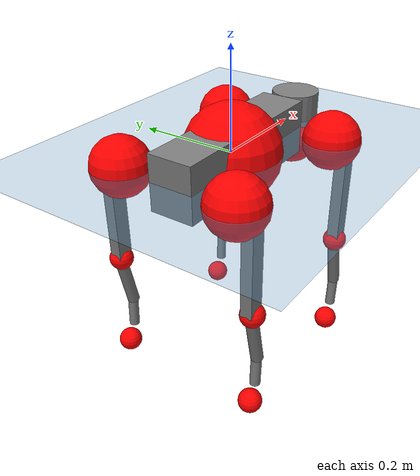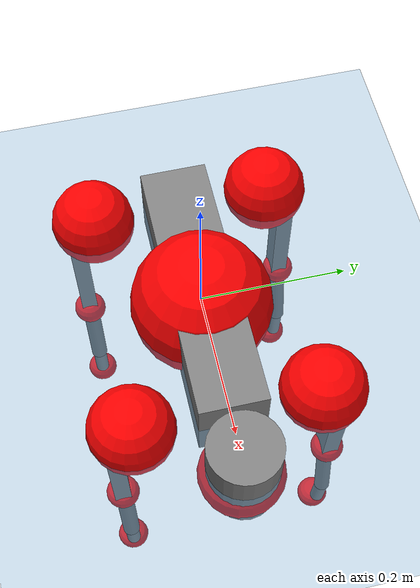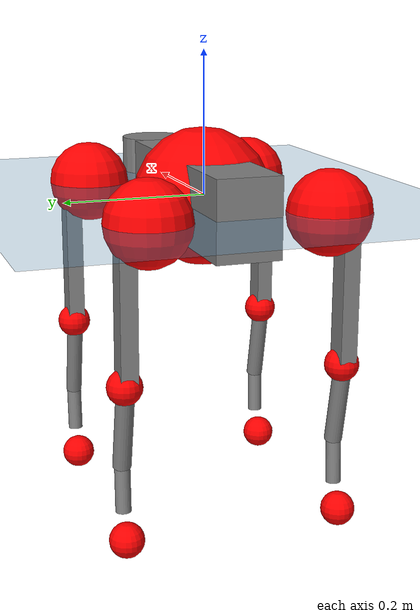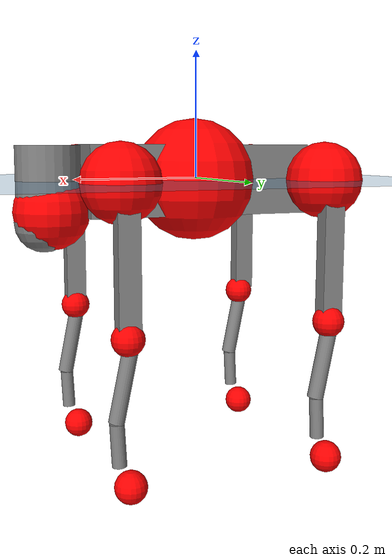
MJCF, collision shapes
<mujoco model="go2">
  <compiler angle="radian" assetdir="assets" balanceinertia="true" inertiafromgeom="false"/>

  <option timestep="0.005" density="1.2" viscosity="2e-05"/>

  <size nkey="1"/>

  <visual>
    <quality shadowsize="8192"/>
    <map shadowclip="0.5"/>
  </visual>

  <default>
    <default class="/">
      <geom contype="0" conaffinity="0" group="1" solref="-1000 -80"/>
      <site size="0.01 0.005 0.005" group="5"/>
      <general forcelimited="true" biastype="affine" gainprm="20" biasprm="0 -20 -0.5"/>
      <default class="go2">
        <joint armature="0.01" damping="0.01" frictionloss="0.2"/>
        <geom condim="1" margin="0.001"/>
        <default class="visual">
          <geom type="mesh" group="2"/>
        </default>
        <default class="collision">
          <geom group="3"/>
          <default class="foot">
            <geom size="0.022 0 0" condim="6" priority="1" friction="0.8 0.02 0.01" solimp="0.015 1 0.022"/>
          </default>
        </default>
        <default class="reward_collision_sphere">
          <geom group="5" rgba="1 0 0 1"/>
        </default>
      </default>
    </default>
  </default>

  <asset>
    <texture type="skybox" colorspace="auto" name="//unnamed_texture_0" builtin="gradient" rgb1="0.95 0.95 0.95" rgb2="0.95 0.95 0.95" width="100" height="600"/>
    <texture type="2d" colorspace="auto" name="texplane" builtin="checker" rgb1="0.345 0.575 0.748" rgb2="0.345 0.575 0.748" markrgb="1 1 1" width="512" height="512"/>
    <material name="MatPlane" class="/" texture="texplane" texuniform="true" texrepeat="2 2" specular="0.9"/>
    <material name="metal" class="/" rgba="0.9 0.95 0.95 1"/>
    <material name="black" class="/" rgba="0 0 0 1"/>
    <material name="white" class="/"/>
    <material name="gray" class="/" rgba="0.671705 0.692426 0.77427 1"/>
    <mesh name="base_0" class="/" file="base_0.obj"/>
    <mesh name="base_1" class="/" file="base_1.obj"/>
    <mesh name="base_2" class="/" file="base_2.obj"/>
    <mesh name="base_3" class="/" file="base_3.obj"/>
    <mesh name="base_4" class="/" file="base_4.obj"/>
    <mesh name="hip_0" class="/" file="hip_0.obj"/>
    <mesh name="hip_1" class="/" file="hip_1.obj"/>
    <mesh name="thigh_0" class="/" file="thigh_0.obj"/>
    <mesh name="thigh_1" class="/" file="thigh_1.obj"/>
    <mesh name="thigh_mirror_0" class="/" file="thigh_mirror_0.obj"/>
    <mesh name="thigh_mirror_1" class="/" file="thigh_mirror_1.obj"/>
    <mesh name="calf_0" class="/" file="calf_0.obj"/>
    <mesh name="calf_1" class="/" file="calf_1.obj"/>
    <mesh name="calf_mirror_0" class="/" file="calf_mirror_0.obj"/>
    <mesh name="calf_mirror_1" class="/" file="calf_mirror_1.obj"/>
    <mesh name="foot" class="/" file="foot.obj"/>
  </asset>

  <worldbody>
    <geom name="floor" class="/" size="100 100 0.125" type="plane" group="0" material="MatPlane"/>
    <light name="toplight_shadow" class="/" pos="0 0 5" dir="0.0990148 0.0990148 -0.990148" type="directional" ambient="0.04 0.04 0.04" diffuse="0.55 0.55 0.55" specular="0.12 0.12 0.12"/>
    <light name="toplight_fill" class="/" pos="0 0 5" dir="0.0990148 0.0990148 -0.990148" type="directional" castshadow="false" ambient="0.04 0.04 0.04" diffuse="0.3 0.3 0.3" specular="0.08 0.08 0.08"/>
    <body name="trunk" childclass="go2" pos="0.00394104 0.000350995 -0.00212536" quat="1 0.000525322 -0.000414787 0.000461784">
      <inertial pos="0.0219771 -0.000923157 -0.00532879" quat="0.0090574 0.715152 -0.006129 0.698883" mass="6.48865" diaginertia="0.039834 0.137897 0.0250887"/>
      <joint name="//unnamed_joint_0" type="free" armature="0" damping="0" frictionloss="0"/>
      <geom name="//unnamed_geom_1" class="visual" material="black" mesh="base_0"/>
      <geom name="//unnamed_geom_2" class="visual" material="black" mesh="base_1"/>
      <geom name="//unnamed_geom_3" class="visual" material="black" mesh="base_2"/>
      <geom name="//unnamed_geom_4" class="visual" material="white" mesh="base_3"/>
      <geom name="//unnamed_geom_5" class="visual" material="gray" mesh="base_4"/>
      <geom name="trunk_1" class="collision" size="0.181961 0.0452243 0.0551397" type="box"/>
      <geom name="trunk_2" class="collision" size="0.0483682 0.0435314" pos="0.235134 0 0.0101073" type="cylinder"/>
      <geom name="trunk_3" class="collision" size="0.0454661" pos="0.241734 0 -0.0606437"/>
      <geom name="//unnamed_geom_9" class="reward_collision_sphere" size="0.0967364"/>
      <geom name="//unnamed_geom_10" class="reward_collision_sphere" size="0.0580418" pos="0.231009 0 -0.0454828"/>
      <site name="imu" pos="-0.0216474 0.0113048 0.0302044" size="0.00967364"/>
      <camera name="track" pos="0 -2.13266 0" quat="0.707107 0.707107 0 0" mode="trackcom"/>
      <camera name="ego_camera" pos="0.25741 0 0.0454828" quat="-0.5 -0.5 0.5 0.5"/>
      <body name="FL_hip" pos="0.159314 0.0491186 0.00158917" quat="0.999998 -0.00112791 0.00150081 -0.000505346">
        <inertial pos="0.000293286 0.000938499 -0.00130148" quat="0.49897 0.50016 0.503864 0.496981" mass="0.580695" diaginertia="0.000318615 0.000829904 0.000497208"/>
        <joint name="FL_hip_joint" pos="0 0 0" axis="0.999965 0.00428726 0.00714199" range="-1.06519 1.09496" armature="0.00915466" damping="0.0101607" frictionloss="0.212424"/>
        <geom name="//unnamed_geom_11" class="visual" material="metal" mesh="hip_0"/>
        <geom name="//unnamed_geom_12" class="visual" material="gray" mesh="hip_1"/>
        <geom name="//unnamed_geom_13" class="collision" size="0.0444987 0.0193473" pos="0 0.0853065 0" quat="0.707107 0.707107 0 0" type="cylinder"/>
        <geom name="//unnamed_geom_14" class="reward_collision_sphere" size="0.0580418" pos="0 0.0746432 0"/>
        <body name="FL_thigh" pos="0.000708573 0.10287 0.00208613" quat="1 -0.000139415 4.71153e-05 -8.66853e-06">
          <inertial pos="-0.00698133 -0.0222809 -0.0358621" quat="0.827051 0.0867084 -0.0199886 0.555039" mass="0.999385" diaginertia="0.00221309 0.00821977 0.000892449"/>
          <joint name="FL_thigh_joint" pos="0 0 0" axis="-0.0011462 0.999999 0.000326972" range="-1.53613 3.46776" armature="0.00911334" damping="0.0259465" frictionloss="0.207499"/>
          <geom name="//unnamed_geom_15" class="visual" material="metal" mesh="thigh_0"/>
          <geom name="//unnamed_geom_16" class="visual" material="gray" mesh="thigh_1"/>
          <geom name="//unnamed_geom_17" class="collision" size="0.103024 0.0118502 0.0164452" pos="0 0 -0.107643" quat="0.707107 0 0.707107 0" type="box"/>
          <body name="FL_calf" pos="0.000829427 0.00118147 -0.216811" quat="1 -3.72429e-05 -9.80493e-05 7.60006e-05">
            <inertial pos="0.00584677 0.000580464 -0.142082" quat="0.707879 -0.00420165 0.00646754 0.706292" mass="0.225327" diaginertia="0.000552483 0.00205221 5.60358e-05"/>
            <joint name="FL_calf_joint" pos="0 0 0" axis="0.00141521 0.999999 -0.000822864" range="-2.75874 -0.797957" armature="0.00911171" damping="0" frictionloss="0.174554"/>
            <geom name="//unnamed_geom_18" class="visual" material="gray" mesh="calf_0"/>
            <geom name="//unnamed_geom_19" class="visual" material="black" mesh="calf_1"/>
            <geom name="FL_calf0" class="collision" size="0.0116084 0.0580418" pos="0.00660025 0 -0.0606437" quat="0.994493 0 -0.104807 0" type="cylinder"/>
            <geom name="//unnamed_geom_21" class="collision" size="0.010641 0.0314393" pos="0.0165006 0 -0.149588" quat="0.999688 0 0.0249974 0" type="cylinder"/>
            <geom name="//unnamed_geom_22" class="visual" pos="0 0 -0.215285" quat="1 0 0 0" material="black" mesh="foot"/>
            <geom name="FL_foot" class="foot" size="0.0241102" pos="-0.00165006 0 -0.215285"/>
            <geom name="//unnamed_geom_24" class="reward_collision_sphere" size="0.0241841"/>
            <geom name="//unnamed_geom_25" class="reward_collision_sphere" size="0.0241841" pos="-0.00165006 0 -0.215285"/>
            <site name="FL_foot" class="foot" pos="-0.00165006 0 -0.215285" size="0.00967364"/>
          </body>
        </body>
      </body>
      <body name="FR_hip" pos="0.15914 -0.0522693 -0.00160256" quat="0.999999 0.000114184 -0.000944391 0.000344565">
        <inertial pos="-0.00594705 0.000550349 9.32817e-05" quat="0.499142 0.504389 0.498274 0.498169" mass="0.566967" diaginertia="0.000327817 0.000793494 0.000502414"/>
        <joint name="FR_hip_joint" pos="0 0 0" axis="0.999983 0.00533613 0.00249807" stiffness="0.0191517" range="-1.03107 1.04028" armature="0.011714" damping="0.000592763" frictionloss="0.153607"/>
        <geom name="//unnamed_geom_26" class="visual" pos="0 4.84385e-10 2.07763e-08" quat="4.63268e-05 1 0 0" material="metal" mesh="hip_0"/>
        <geom name="//unnamed_geom_27" class="visual" pos="0 7.85247e-10 -5.13877e-08" quat="4.63268e-05 1 0 0" material="gray" mesh="hip_1"/>
        <geom name="//unnamed_geom_28" class="collision" size="0.0444987 0.0193473" pos="0 -0.0853065 0" quat="0.707107 0.707107 0 0" type="cylinder"/>
        <geom name="//unnamed_geom_29" class="reward_collision_sphere" size="0.0580418" pos="0 -0.0746432 0"/>
        <body name="FR_thigh" pos="0.000265955 -0.104226 -0.00301953" quat="0.999999 0.00143142 3.01879e-05 0.000872108">
          <inertial pos="-0.00244909 0.0283946 -0.0355087" quat="0.546025 -0.0136831 0.082063 0.833627" mass="1.07544" diaginertia="0.00218758 0.00764365 0.000918011"/>
          <joint name="FR_thigh_joint" pos="0 0 0" axis="0.005515 -0.999898 0.0131587" range="-3.54067 1.52496" armature="0.00961511" damping="0" frictionloss="0.212215"/>
          <geom name="//unnamed_geom_30" class="visual" material="metal" mesh="thigh_mirror_0"/>
          <geom name="//unnamed_geom_31" class="visual" material="gray" mesh="thigh_mirror_1"/>
          <geom name="//unnamed_geom_32" class="collision" size="0.103024 0.0118502 0.0164452" pos="0 0 -0.107643" quat="0.707107 0 0.707107 0" type="box"/>
          <body name="FR_calf" pos="0.000187124 0.000908121 -0.216599" quat="1 9.32572e-05 0.000293183 8.73982e-05">
            <inertial pos="0.00639281 0.000925942 -0.145605" quat="0.696985 -0.00653471 -0.00172235 0.717054" mass="0.220291" diaginertia="0.000541544 0.00198698 5.50452e-05"/>
            <joint name="FR_calf_joint" pos="0 0 0" axis="-0.0109422 -0.999922 -0.00597064" range="0.827114 2.7008" armature="0.0100778" damping="0.0124313" frictionloss="0.217664"/>
            <geom name="//unnamed_geom_33" class="visual" material="gray" mesh="calf_mirror_0"/>
            <geom name="//unnamed_geom_34" class="visual" material="black" mesh="calf_mirror_1"/>
            <geom name="FR_calf0" class="collision" size="0.0125757 0.0580418" pos="0.00825031 0 -0.0606437" quat="0.995004 0 -0.0998334 0" type="cylinder"/>
            <geom name="//unnamed_geom_36" class="collision" size="0.010641 0.0314393" pos="0.0165006 0 -0.149588" quat="0.999688 0 0.0249974 0" type="cylinder"/>
            <geom name="//unnamed_geom_37" class="visual" pos="0 0 -0.215285" quat="1 0 0 0" material="black" mesh="foot"/>
            <geom name="FR_foot" class="foot" size="0.0223453" pos="-0.00165006 0 -0.215285"/>
            <geom name="//unnamed_geom_39" class="reward_collision_sphere" size="0.0241841"/>
            <geom name="//unnamed_geom_40" class="reward_collision_sphere" size="0.0241841" pos="-0.00165006 0 -0.215285"/>
            <site name="FR_foot" class="foot" pos="-0.00165006 0 -0.215285" size="0.00967364"/>
          </body>
        </body>
      </body>
      <body name="RL_hip" pos="-0.162881 0.0533726 0.000995646" quat="0.999996 0.00171873 -0.000490946 -0.0021735">
        <inertial pos="0.00075835 0.000480286 0.00177213" quat="0.505463 0.498691 0.496721 0.499082" mass="0.636622" diaginertia="0.000339808 0.000819246 0.000493291"/>
        <joint name="RL_hip_joint" pos="0 0 0" axis="-0.999858 -0.00856694 -0.0145239" range="-1.09705 1.0778" armature="0.00976481" damping="0.00869883" frictionloss="0.21434"/>
        <geom name="//unnamed_geom_41" class="visual" pos="1.61772e-09 0 3.1711e-07" quat="4.63268e-05 0 1 0" material="metal" mesh="hip_0"/>
        <geom name="//unnamed_geom_42" class="visual" pos="2.62251e-09 0 2.81231e-07" quat="4.63268e-05 0 1 0" material="gray" mesh="hip_1"/>
        <geom name="//unnamed_geom_43" class="collision" size="0.0444987 0.0193473" pos="0 0.0853065 0" quat="0.707107 0.707107 0 0" type="cylinder"/>
        <geom name="//unnamed_geom_44" class="reward_collision_sphere" size="0.0580418" pos="0 0.0746432 0"/>
        <body name="RL_thigh" pos="0.0036566 0.103958 -0.000586659" quat="0.999998 -0.00094483 -0.00148367 0.000518827">
          <inertial pos="-0.002476 -0.0257113 -0.035393" quat="0.835514 0.086496 -0.0142917 0.54243" mass="1.07173" diaginertia="0.00235203 0.00820637 0.000957247"/>
          <joint name="RL_thigh_joint" pos="0 0 0" axis="0.000853322 0.999999 0.00078345" stiffness="0.00992006" range="-0.559256 4.52034" armature="0.00967878" damping="0.0270769" frictionloss="0.171171"/>
          <geom name="//unnamed_geom_45" class="visual" material="metal" mesh="thigh_0"/>
          <geom name="//unnamed_geom_46" class="visual" material="gray" mesh="thigh_1"/>
          <geom name="//unnamed_geom_47" class="collision" size="0.103024 0.0118502 0.0164452" pos="0 0 -0.107643" quat="0.707107 0 0.707107 0" type="box"/>
          <body name="RL_calf" pos="0.00141112 0.00255909 -0.213149" quat="1 0.000138851 -0.000309544 -0.000177157">
            <inertial pos="0.00509643 -0.000836609 -0.142122" quat="0.711198 0.00115762 -0.00337639 0.702982" mass="0.217493" diaginertia="0.00056938 0.00199999 5.50125e-05"/>
            <joint name="RL_calf_joint" pos="0 0 0" axis="-0.00588908 0.999979 0.00262078" range="-2.77497 -0.840611" armature="0.0089489" damping="0.0248672" frictionloss="0.195481"/>
            <geom name="//unnamed_geom_48" class="visual" material="gray" mesh="calf_0"/>
            <geom name="//unnamed_geom_49" class="visual" material="black" mesh="calf_1"/>
            <geom name="RL_calf0" class="collision" size="0.0125757 0.0580418" pos="0.00825031 0 -0.0606437" quat="0.995004 0 -0.0998334 0" type="cylinder"/>
            <geom name="//unnamed_geom_51" class="collision" size="0.010641 0.0314393" pos="0.0165006 0 -0.149588" quat="0.999688 0 0.0249974 0" type="cylinder"/>
            <geom name="//unnamed_geom_52" class="visual" pos="0 0 -0.215285" quat="1 0 0 0" material="black" mesh="foot"/>
            <geom name="RL_foot" class="foot" size="0.0205172" pos="-0.00165006 0 -0.215285"/>
            <geom name="//unnamed_geom_54" class="reward_collision_sphere" size="0.0241841"/>
            <geom name="//unnamed_geom_55" class="reward_collision_sphere" size="0.0241841" pos="-0.00165006 0 -0.215285"/>
            <site name="RL_foot" class="foot" pos="-0.00165006 0 -0.215285" size="0.00967364"/>
          </body>
        </body>
      </body>
      <body name="RR_hip" pos="-0.161068 -0.0453104 -0.000825414" quat="1 3.71985e-05 1.39032e-05 3.33664e-05">
        <inertial pos="0.00448513 -0.00358993 0.000127061" quat="0.49965 0.504171 0.503037 0.493067" mass="0.620001" diaginertia="0.000343028 0.000829312 0.000495657"/>
        <joint name="RR_hip_joint" pos="0 0 0" axis="-0.999915 0.0113167 -0.00645783" range="-0.999711 1.0451" armature="0.00769159" damping="0" frictionloss="0.216785"/>
        <geom name="//unnamed_geom_56" class="visual" pos="-1.60936e-09 4.84385e-10 2.96333e-07" quat="2.14617e-09 4.63268e-05 4.63268e-05 -1" material="metal" mesh="hip_0"/>
        <geom name="//unnamed_geom_57" class="visual" pos="-2.64317e-09 7.85247e-10 3.32619e-07" quat="2.14617e-09 4.63268e-05 4.63268e-05 -1" material="gray" mesh="hip_1"/>
        <geom name="//unnamed_geom_58" class="collision" size="0.0444987 0.0193473" pos="0 -0.0853065 0" quat="0.707107 0.707107 0 0" type="cylinder"/>
        <geom name="//unnamed_geom_59" class="reward_collision_sphere" size="0.0580418" pos="0 -0.0746432 0"/>
        <body name="RR_thigh" pos="0.00244295 -0.10372 0.00236685" quat="1 0.000282802 1.30579e-05 0.000405446">
          <inertial pos="-0.00277553 0.0224065 -0.0326939" quat="0.551169 -0.0166052 0.0869218 0.829688" mass="0.994298" diaginertia="0.00215642 0.00791244 0.00093514"/>
          <joint name="RR_thigh_joint" pos="0 0 0" axis="-0.0128841 -0.999674 0.0220295" range="-4.47669 0.534427" armature="0.0101314" damping="0.000715608" frictionloss="0.168927"/>
          <geom name="//unnamed_geom_60" class="visual" material="metal" mesh="thigh_mirror_0"/>
          <geom name="//unnamed_geom_61" class="visual" material="gray" mesh="thigh_mirror_1"/>
          <geom name="//unnamed_geom_62" class="collision" size="0.103024 0.0118502 0.0164452" pos="0 0 -0.107643" quat="0.707107 0 0.707107 0" type="box"/>
          <body name="RR_calf" pos="0.00559486 -0.000212362 -0.217651" quat="0.999999 -0.00101919 5.69195e-05 0.000236321">
            <inertial pos="9.43713e-06 0.00175672 -0.141939" quat="0.705958 0.00441924 0.00617462 0.708213" mass="0.216455" diaginertia="0.000607797 0.00214223 5.90392e-05"/>
            <joint name="RR_calf_joint" pos="0 0 0" axis="-0.00811135 -0.999946 -0.00649739" range="0.825552 2.61462" armature="0.0103254" damping="0.0209298" frictionloss="0.217457"/>
            <geom name="//unnamed_geom_63" class="visual" material="gray" mesh="calf_mirror_0"/>
            <geom name="//unnamed_geom_64" class="visual" material="black" mesh="calf_mirror_1"/>
            <geom name="RR_calf0" class="collision" size="0.0125757 0.0580418" pos="0.00825031 0 -0.0606437" quat="0.995004 0 -0.0998334 0" type="cylinder"/>
            <geom name="//unnamed_geom_66" class="collision" size="0.010641 0.0314393" pos="0.0165006 0 -0.149588" quat="0.999688 0 0.0249974 0" type="cylinder"/>
            <geom name="//unnamed_geom_67" class="visual" pos="0 0 -0.215285" quat="1 0 0 0" material="black" mesh="foot"/>
            <geom name="RR_foot" class="foot" size="0.0188113" pos="-0.00165006 0 -0.215285"/>
            <geom name="//unnamed_geom_69" class="reward_collision_sphere" size="0.0241841"/>
            <geom name="//unnamed_geom_70" class="reward_collision_sphere" size="0.0241841" pos="-0.00165006 0 -0.215285"/>
            <site name="RR_foot" class="foot" pos="-0.00165006 0 -0.215285" size="0.00967364"/>
          </body>
        </body>
      </body>
    </body>
  </worldbody>

  <contact>
    <pair class="/" geom1="floor" geom2="FL_foot" name="//unnamed_contact_0"/>
    <pair class="/" geom1="floor" geom2="FR_foot" name="//unnamed_contact_1"/>
    <pair class="/" geom1="floor" geom2="RL_foot" name="//unnamed_contact_2"/>
    <pair class="/" geom1="floor" geom2="RR_foot" name="//unnamed_contact_3"/>
  </contact>

  <actuator>
    <general name="FL_hip" class="/" joint="FL_hip_joint" forcerange="-22.058 22.058" gainprm="19.324" biasprm="0 -19.324 -0.487507"/>
    <general name="FL_thigh" class="/" joint="FL_thigh_joint" forcerange="-21.8722 21.8722" gainprm="19.324" biasprm="0 -19.324 -0.487507"/>
    <general name="FL_calf" class="/" joint="FL_calf_joint" forcerange="-43.6424 43.6424" gainprm="19.324" biasprm="0 -19.324 -0.487507"/>
    <general name="FR_hip" class="/" joint="FR_hip_joint" forcerange="-18.7 18.7" gainprm="19.324" biasprm="0 -19.324 -0.487507"/>
    <general name="FR_thigh" class="/" joint="FR_thigh_joint" forcerange="-22.8849 22.8849" gainprm="19.324" biasprm="0 -19.324 -0.487507"/>
    <general name="FR_calf" class="/" joint="FR_calf_joint" forcerange="-45.2954 45.2954" gainprm="19.324" biasprm="0 -19.324 -0.487507"/>
    <general name="RL_hip" class="/" joint="RL_hip_joint" forcerange="-21.6017 21.6017" gainprm="19.324" biasprm="0 -19.324 -0.487507"/>
    <general name="RL_thigh" class="/" joint="RL_thigh_joint" forcerange="-21.7823 21.7823" gainprm="19.324" biasprm="0 -19.324 -0.487507"/>
    <general name="RL_calf" class="/" joint="RL_calf_joint" forcerange="-46.9764 46.9764" gainprm="19.324" biasprm="0 -19.324 -0.487507"/>
    <general name="RR_hip" class="/" joint="RR_hip_joint" forcerange="-24.5745 24.5745" gainprm="19.324" biasprm="0 -19.324 -0.487507"/>
    <general name="RR_thigh" class="/" joint="RR_thigh_joint" forcerange="-20.8414 20.8414" gainprm="19.324" biasprm="0 -19.324 -0.487507"/>
    <general name="RR_calf" class="/" joint="RR_calf_joint" forcerange="-38.7754 38.7754" gainprm="19.324" biasprm="0 -19.324 -0.487507"/>
  </actuator>

  <sensor>
    <gyro site="imu" name="imu_angular_velocity"/>
    <velocimeter site="imu" name="imu_linear_velocity"/>
    <framelinvel objtype="site" objname="FL_foot" name="FL_foot_global_linear_velocity"/>
    <framelinvel objtype="site" objname="FR_foot" name="FR_foot_global_linear_velocity"/>
    <framelinvel objtype="site" objname="RL_foot" name="RL_foot_global_linear_velocity"/>
    <framelinvel objtype="site" objname="RR_foot" name="RR_foot_global_linear_velocity"/>
  </sensor>

  <keyframe>
    <key name="home" qpos="0 0 0.325 1 0 0 0 0.1 0.8 -1.5 -0.1 -0.8 1.5 -0.1 0.8 -1.5 0.1 -0.8 1.5"/>
  </keyframe>
</mujoco>
